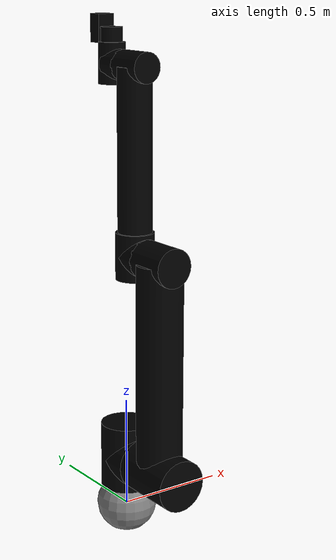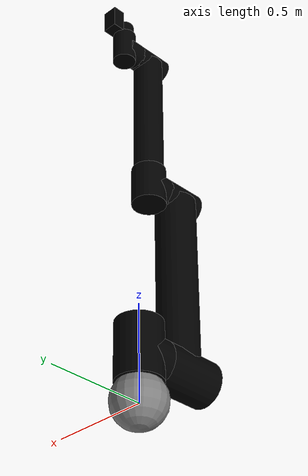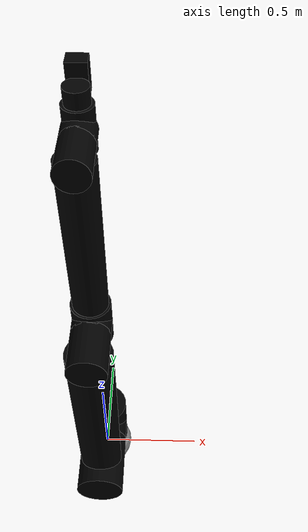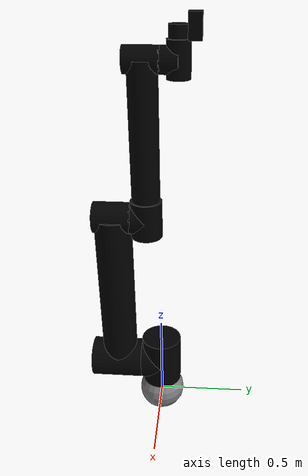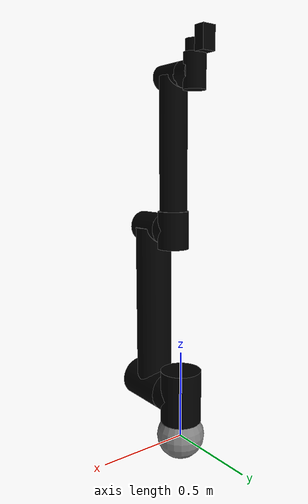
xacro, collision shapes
<?xml version="1.0"?>
<robot xmlns:xacro="http://wiki.ros.org/xacro" name="tm5s">

  <xacro:arg name="ns" default="" />
  <xacro:arg name="prefix" default="" />

  <xacro:arg name="gripper" default="none" />

  <xacro:arg name="color" default="none" />

  <xacro:arg name="trans_hw_iface" default="hardware_interface/PositionJointInterface" />

  <xacro:include filename="$(find tmr_description)/xacro/macro.gazebo.xacro" />
  <xacro:include filename="$(find tmr_description)/xacro/macro.transmission.xacro" />
  <xacro:include filename="$(find tmr_description)/xacro/macro.materials.xacro" />

  <!-- tm25s -->
  <xacro:include filename="$(find tmr_description)/xacro/macro.tm25s.urdf.xacro" />

  <xacro:tmr_gazebo ns="$(arg ns)" prefix="$(arg prefix)" />
  <xacro:tmr_transmission prefix="$(arg prefix)" hw_iface="$(arg trans_hw_iface)" />
  <xacro:tmr_materials/>

  <!-- Arm -->
  <xacro:property name="color" value="$(arg color)"/>
  <xacro:if value="${color == 'none'}">
    <xacro:tm25s ns="$(arg ns)" prefix="$(arg prefix)" />
  </xacro:if>
  <!-- Arm.color.stl -->
  <xacro:unless value="${color == 'none'}">
    <xacro:tm25s ns="$(arg ns)" prefix="$(arg prefix)" color="${color}" format="stl" />
  </xacro:unless>

  <!-- Arm + Gripper -->
  <xacro:property name="gripper" value="$(arg gripper)"/>
  <xacro:if value="${gripper == 'robotiq_2f'}">
    <xacro:include filename="$(find tmr_description)/xacro/gripper/robotiq_2f.urdf.xacro" />
    <xacro:robotiq_2f prefix="$(arg prefix)"/>
  </xacro:if>
  <xacro:if value="${gripper == 'rg2'}">
    <xacro:include filename="$(find tmr_description)/xacro/gripper/on_robot_rg2.urdf.xacro" />
    <xacro:on_robot_rg2 prefix="$(arg prefix)"/>
  </xacro:if>

</robot>

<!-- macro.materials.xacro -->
<robot xmlns:xacro="http://www.ros.org/wiki/xacro">
  <xacro:macro name="tmr_materials">
    <material name="none">
      <color rgba="0.0 0.0 0.0 1.0" />
    </material>
    <material name="grey">
      <color rgba="0.5 0.5 0.5 1.0" />
    </material>
    <material name="white">
      <color rgba="0.95 0.95 0.95 1.0" />
    </material>
    <material name="red">
      <color rgba="0.95 0.0 0.0 1.0" />
    </material>
    <material name="orange">
      <color rgba="1.0 0.5 0.0 1.0" />
    </material>
    <material name="yellow">
      <color rgba="1.0 1.0 0.0 1.0" />
    </material>
    <material name="green">
      <color rgba="0.0 1.0 0.0 1.0" />
    </material>
    <material name="blue">
      <color rgba="0.0 0.0 1.0 1.0" />
    </material>
    <material name="indigo">
      <color rgba="0.3 0.3 0.6 1.0" />
    </material>
    <material name="violet">
      <color rgba="0.6 0.0 1.0 1.0" />
    </material>
    <material name="black">
      <color rgba="0.0 0.0 0.0 1.0" />
    </material>
  </xacro:macro>
</robot>

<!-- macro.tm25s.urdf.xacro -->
<robot xmlns:xacro="http://wiki.ros.org/xacro">

  <xacro:include filename="$(find tmr_description)/xacro/macro.inertial.xacro" />

  <xacro:macro name="tm25s" params="ns prefix
    color:=none format:=dae">
    <xacro:property name="mass_0" value="1.0" />
    <xacro:property name="mass_1" value="22.67" />
    <xacro:property name="mass_2" value="36.40" />
    <xacro:property name="mass_3" value="8.03" />
    <xacro:property name="mass_4" value="8.04" />
    <xacro:property name="mass_5" value="2.35" />
    <xacro:property name="mass_6" value="0.72" />

<!--LinkDescription-->
  <link name="${prefix}link_0">
    <visual>
      <geometry>
        <mesh filename="package://tmr_description/meshes/tm25s/visual/tm25s-base.stl" />
      </geometry>
      <material name="grey" />
    </visual>
    <collision>
      <geometry>
        <sphere radius="0.135" />
      </geometry>
      <origin xyz="0 0 0.01" rpy="0 0 0" />
    </collision>
<!--inertial-->
    <xacro:cylinder_inertial_z radius="0.1" length="0.08" mass="${mass_0}">
      <origin xyz="0 0 0.04" rpy="0 0 0" />
    </xacro:cylinder_inertial_z>
  </link>

  <joint name="${prefix}joint_1" type="revolute">
    <parent link="${prefix}link_0" />
    <child link="${prefix}link_1" />
    <origin xyz="0 0 0.235" rpy="0 0 0" />
    <axis xyz="0 0 1" />
<!--limit-->
    <limit lower="${-2.0*pi}" upper="${2.0*pi}" velocity="3.14" effort="1000.0" />
  </joint>

  <link name="${prefix}link_1">
    <visual>
      <geometry>
        <mesh filename="package://tmr_description/meshes/tm25s/visual/tm25s-j1.${format}" />
      </geometry>
      <material name="${color}" />
    </visual>
    <collision>
      <geometry>
        <cylinder length="0.3" radius="0.115" />
      </geometry>
      <origin xyz="0 0 0.013" rpy="0 0 0" />
    </collision>
    <collision>
      <geometry>
        <cylinder length="0.118" radius="0.115" />
      </geometry>
      <origin xyz="0 -0.059 0" rpy="${-0.5*pi} 0 0" />
    </collision>
<!--inertial-->
    <xacro:cylinder_inertial_z radius="0.06" length="0.16" mass="${mass_1}">
      <origin xyz="0 0 0" rpy="0 0 0" />
    </xacro:cylinder_inertial_z>
  </link>

  <joint name="${prefix}joint_2" type="revolute">
    <parent link="${prefix}link_1" />
    <child link="${prefix}link_2" />
    <origin xyz="0 0 0" rpy="${-0.5*pi} ${-0.5*pi} 0" />
    <axis xyz="0 0 1" />
<!--limit-->
    <limit lower="${-2.0*pi}" upper="${2.0*pi}" velocity="3.14" effort="1000" />
  </joint>

  <link name="${prefix}link_2">
    <visual>
      <geometry>
        <mesh filename="package://tmr_description/meshes/tm25s/visual/tm25s-a1.${format}" />
      </geometry>
      <material name="${color}" />
    </visual>
    <collision>
      <geometry>
        <cylinder length="0.3" radius="0.115" />
      </geometry>
      <origin xyz="0 0 -0.266" rpy="0 0 0" />
    </collision>
    <collision>
      <geometry>
        <cylinder length="0.950" radius="0.102" />
      </geometry>
      <origin xyz="0.475 0 -0.253" rpy="0 ${0.5*pi} 0" />
    </collision>
    <collision>
      <geometry>
        <cylinder length="0.205" radius="0.085" />
      </geometry>
      <origin xyz="0.950 0 -0.253" rpy="0 0 0" />
    </collision>
<!--inertial-->
    <xacro:cylinder_inertial_x radius="0.09" length="0.950" mass="${mass_2}">
      <origin xyz="0.475 0 -0.253" rpy="0 0 0" />
    </xacro:cylinder_inertial_x>
  </link>

  <joint name="${prefix}joint_3" type="revolute">
    <parent link="${prefix}link_2" />
    <child link="${prefix}link_3" />
    <origin xyz="0.950 0 -0.070" rpy="0 0 ${0.5*pi}" />
    <axis xyz="0 0 1" />
<!--limit-->
    <limit lower="${-pi}" upper="${pi}" velocity="3.14" effort="500" />
  </joint>

  <link name="${prefix}link_3">
    <visual>
      <geometry>
        <mesh filename="package://tmr_description/meshes/tm25s/visual/tm25s-j4.${format}" />
      </geometry>
      <material name="${color}" />
    </visual>
    <collision>
      <geometry>
        <cylinder length="0.0882" radius="0.085" />
      </geometry>
      <origin xyz="0 0 -0.0441" rpy="0 0 0" />
    </collision>
    <collision>
      <geometry>
        <cylinder length="0.205" radius="0.085" />
      </geometry>
      <origin xyz="0 0 0" rpy="${0.5*pi} 0 0" />
    </collision>
<!--inertial-->
    <xacro:cylinder_inertial_y radius="0.075" length="0.16" mass="${mass_3}">
      <origin xyz="0 0 0" rpy="0 0 0" />
    </xacro:cylinder_inertial_y>
  </link>

  <joint name="${prefix}joint_4" type="revolute">
    <parent link="${prefix}link_3" />
    <child link="${prefix}link_4" />
    <origin xyz="0 -0.800 0" rpy="${0.5*pi} 0 0" />
    <axis xyz="0 0 1" />
<!--limit-->
    <limit lower="${-2.0*pi}" upper="${2.0*pi}" velocity="3.92" effort="320" />
  </joint>

  <link name="${prefix}link_4">
    <visual>
      <geometry>
        <mesh filename="package://tmr_description/meshes/tm25s/visual/tm25s-a2.${format}" />
      </geometry>
      <material name="${color}" />
    </visual>
    <collision>
      <geometry>
        <cylinder length="0.6975" radius="0.075" />
      </geometry>
      <origin xyz="0 0 -0.34875" rpy="0 0 0" />
    </collision>
    <collision>
      <geometry>
        <cylinder length="0.175" radius="0.065" />
      </geometry>
      <origin xyz="0 -0.003 0" rpy="${-0.5*pi} 0 0" />
    </collision>
<!--inertial-->
    <xacro:cylinder_inertial_z radius="0.065" length="0.6975" mass="${mass_4}">
      <origin xyz="0 0 -0.34875" rpy="0 0 0" />
    </xacro:cylinder_inertial_z>
  </link>

  <joint name="${prefix}joint_5" type="revolute">
    <parent link="${prefix}link_4" />
    <child link="${prefix}link_5" />
    <origin xyz="0 0.1702 0" rpy="${-0.5*pi} 0 0" />
    <axis xyz="0 0 1" />
<!--limit-->
    <limit lower="${-2.0*pi}" upper="${2.0*pi}" velocity="3.92" effort="160" />
  </joint>

  <link name="${prefix}link_5">
    <visual>
      <geometry>
        <mesh filename="package://tmr_description/meshes/tm25s/visual/tm25s-j6.${format}" />
      </geometry>
      <material name="${color}" />
    </visual>
    <collision>
      <geometry>
        <cylinder length="0.093" radius="0.065" />
      </geometry>
      <origin xyz="0 0 -0.0465" rpy="0 0 0" />
    </collision>
    <collision>
      <geometry>
        <cylinder length="0.175" radius="0.058" />
      </geometry>
      <origin xyz="0 -0.0035 0" rpy="${0.5*pi} 0 0" />
    </collision>
<!--inertial-->
    <xacro:cylinder_inertial_y radius="0.045" length="0.16" mass="${mass_5}">
      <origin xyz="0 0 0" rpy="0 0 0" />
    </xacro:cylinder_inertial_y>
  </link>

  <joint name="${prefix}joint_6" type="revolute">
    <parent link="${prefix}link_5" />
    <child link="${prefix}link_6" />
    <origin xyz="0 -0.15295 0" rpy="${0.5*pi} 0 0" />
    <axis xyz="0 0 1" />
<!--limit-->
    <limit lower="${-2.0*pi}" upper="${2.0*pi}" velocity="3.92" effort="160" />
  </joint>

  <link name="${prefix}link_6">
    <visual>
      <geometry>
        <mesh filename="package://tmr_description/meshes/tm25s/visual/tm25s-io.${format}" />
      </geometry>
      <material name="${color}" />
    </visual>
    <collision>
      <geometry>
        <cylinder length="0.062" radius="0.047" />
      </geometry>
      <origin xyz="0 0 -0.031" rpy="0 0 0" />
    </collision>
    <collision>
      <geometry>
        <box size="0.076 0.064 0.12" />
      </geometry>
      <origin xyz="0 0.074 -0.008" rpy="0 0 0" />
    </collision>
<!--inertial-->
    <xacro:cylinder_inertial_z radius="0.045" length="0.06" mass="${mass_6}">
      <origin xyz="0 0 0" rpy="0 0 0" />
    </xacro:cylinder_inertial_z>
  </link>

  <link name="${prefix}base" />
  <joint name="${prefix}base_fixed_joint" type="fixed">
    <parent link="${prefix}base" />
    <child link="${prefix}link_0" />
    <origin xyz="0 0 0" rpy="0 0 0" />
  </joint>

  <link name="${prefix}flange" />
  <joint name="${prefix}flange_fixed_joint" type="fixed">
    <parent link="${prefix}link_6" />
    <child link="${prefix}flange" />
    <origin xyz="0 0 0" rpy="0 0 0" />
  </joint>
<!--LinkDescription-->

  </xacro:macro>

</robot>
